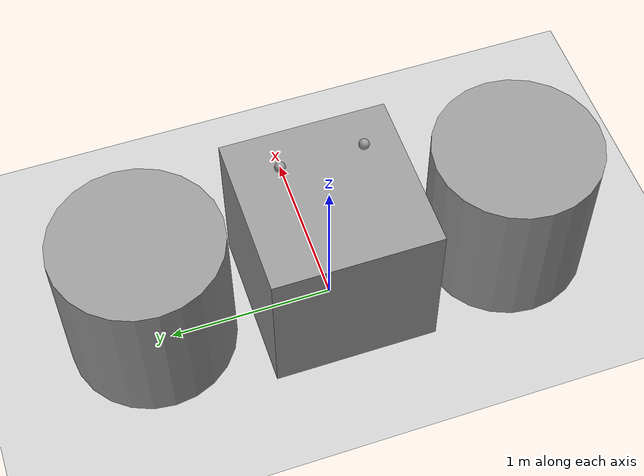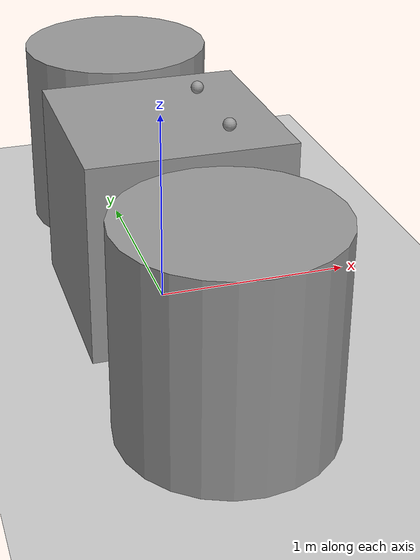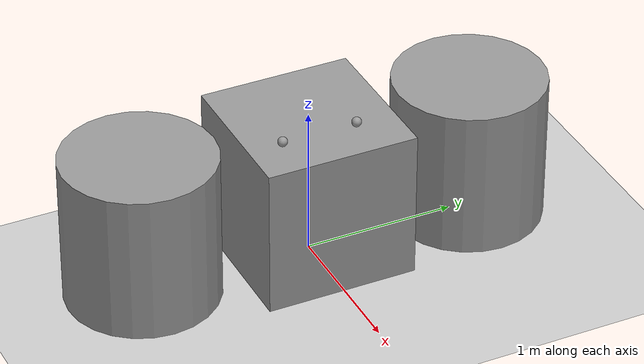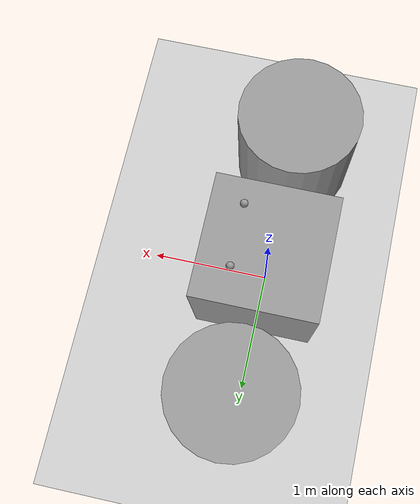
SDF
<sdf version="1.7">
 <world name="default">
  <light name="sun" type="directional">
   <pose>0 0 10 0 -0 0</pose>
   <diffuse>0.8 0.8 0.8 1</diffuse>
   <specular>0.2 0.2 0.2 1</specular>
   <attenuation>
    <range>1000</range>
    <constant>0.9</constant>
    <linear>0.01</linear>
    <quadratic>0.001</quadratic>
   </attenuation>
   <direction>-0.5 0.1 -0.9</direction>
   <spot><inner_angle>0</inner_angle><outer_angle>0</outer_angle><falloff>0</falloff></spot>
  </light>
  <model name="ground_plane">
   <static>1</static>
   <link name="link">
    <collision name="collision">
     <geometry><plane><normal>0 0 1</normal><size>100 100</size></plane></geometry>
     <surface>
      <contact><collide_bitmask>65535</collide_bitmask></contact>
      <friction><ode><mu>100</mu><mu2>50</mu2></ode></friction>
     </surface>
    </collision>
    <visual name="visual">
     <cast_shadows>0</cast_shadows>
     <geometry><plane><normal>0 0 1</normal><size>100 100</size></plane></geometry>
     <material>
      <script><uri>file://media/materials/scripts/gazebo.material</uri><name>Gazebo/Grey</name></script>
     </material>
    </visual>
   </link>
  </model>
  <gravity>0 0 -9.8</gravity>
  <magnetic_field>6e-06 2.3e-05 -4.2e-05</magnetic_field>
  <atmosphere type="adiabatic"/>
  <physics type="ode">
   <max_step_size>0.001</max_step_size>
   <real_time_factor>1</real_time_factor>
   <real_time_update_rate>1000</real_time_update_rate>
  </physics>
  <scene><ambient>0.4 0.4 0.4 1</ambient><background>0.7 0.7 0.7 1</background><shadows>1</shadows></scene>
  <spherical_coordinates>
   <surface_model>EARTH_WGS84</surface_model>
   <latitude_deg>0</latitude_deg>
   <longitude_deg>0</longitude_deg>
   <elevation>0</elevation>
   <heading_deg>0</heading_deg>
  </spherical_coordinates>
  <model name="unit_box">
   <link name="link">
    <inertial>
     <mass>1</mass>
     <inertia>
      <ixx>0.166667</ixx>
      <ixy>0</ixy>
      <ixz>0</ixz>
      <iyy>0.166667</iyy>
      <iyz>0</iyz>
      <izz>0.166667</izz>
     </inertia>
    </inertial>
    <visual name="visual">
     <geometry><box><size>1 1 1</size></box></geometry>
     <material>
      <script><name>Gazebo/Grey</name><uri>file://media/materials/scripts/gazebo.material</uri></script>
      <shader type="pixel"/>
     </material>
    </visual>
    <collision name="collision">
     <geometry><box><size>1 1 1</size></box></geometry>
     <surface>
      <friction>
       <ode><mu>1</mu><mu2>1</mu2><fdir1>0 0 0</fdir1><slip1>0</slip1><slip2>0</slip2></ode>
       <torsional>
        <coefficient>1</coefficient>
        <patch_radius>0</patch_radius>
        <surface_radius>0</surface_radius>
        <use_patch_radius>1</use_patch_radius>
        <ode><slip>0</slip></ode>
       </torsional>
      </friction>
      <bounce><restitution_coefficient>0</restitution_coefficient><threshold>1e+06</threshold></bounce>
      <contact>
       <collide_without_contact>0</collide_without_contact>
       <collide_without_contact_bitmask>1</collide_without_contact_bitmask>
       <collide_bitmask>1</collide_bitmask>
       <ode>
        <soft_cfm>0</soft_cfm>
        <soft_erp>0.2</soft_erp>
        <kp>1e+13</kp>
        <kd>1</kd>
        <max_vel>0.01</max_vel>
        <min_depth>0</min_depth>
       </ode>
       <bullet>
        <split_impulse>1</split_impulse>
        <split_impulse_penetration_threshold>-0.01</split_impulse_penetration_threshold>
        <soft_cfm>0</soft_cfm>
        <soft_erp>0.2</soft_erp>
        <kp>1e+13</kp>
        <kd>1</kd>
       </bullet>
      </contact>
     </surface>
    </collision>
   </link>
   <static>1</static>
   <pose>0.017973 -0.010251 0.5 0 -0 0</pose>
  </model>
  <model name="unit_cylinder">
   <link name="link">
    <inertial>
     <mass>1</mass>
     <inertia><ixx>0.145833</ixx><ixy>0</ixy><ixz>0</ixz><iyy>0.145833</iyy><iyz>0</iyz><izz>0.125</izz></inertia>
    </inertial>
    <visual name="visual">
     <geometry><cylinder><radius>0.5</radius><length>1</length></cylinder></geometry>
     <material>
      <script><name>Gazebo/Grey</name><uri>file://media/materials/scripts/gazebo.material</uri></script>
      <shader type="pixel"/>
     </material>
    </visual>
    <collision name="collision">
     <geometry><cylinder><radius>0.5</radius><length>1</length></cylinder></geometry>
     <surface>
      <friction>
       <ode><mu>1</mu><mu2>1</mu2><fdir1>0 0 0</fdir1><slip1>0</slip1><slip2>0</slip2></ode>
       <torsional>
        <coefficient>1</coefficient>
        <patch_radius>0</patch_radius>
        <surface_radius>0</surface_radius>
        <use_patch_radius>1</use_patch_radius>
        <ode><slip>0</slip></ode>
       </torsional>
      </friction>
      <bounce><restitution_coefficient>0</restitution_coefficient><threshold>1e+06</threshold></bounce>
      <contact>
       <collide_without_contact>0</collide_without_contact>
       <collide_without_contact_bitmask>1</collide_without_contact_bitmask>
       <collide_bitmask>1</collide_bitmask>
       <ode>
        <soft_cfm>0</soft_cfm>
        <soft_erp>0.2</soft_erp>
        <kp>1e+13</kp>
        <kd>1</kd>
        <max_vel>0.01</max_vel>
        <min_depth>0</min_depth>
       </ode>
       <bullet>
        <split_impulse>1</split_impulse>
        <split_impulse_penetration_threshold>-0.01</split_impulse_penetration_threshold>
        <soft_cfm>0</soft_cfm>
        <soft_erp>0.2</soft_erp>
        <kp>1e+13</kp>
        <kd>1</kd>
       </bullet>
      </contact>
     </surface>
    </collision>
   </link>
   <static>1</static>
   <pose>-0.027479 -1.12737 0.5 0 -0 0</pose>
  </model>
  <model name="unit_cylinder_clone">
   <link name="link">
    <inertial>
     <mass>1</mass>
     <inertia><ixx>0.145833</ixx><ixy>0</ixy><ixz>0</ixz><iyy>0.145833</iyy><iyz>0</iyz><izz>0.125</izz></inertia>
    </inertial>
    <visual name="visual">
     <geometry><cylinder><radius>0.5</radius><length>1</length></cylinder></geometry>
     <material>
      <script><name>Gazebo/Grey</name><uri>file://media/materials/scripts/gazebo.material</uri></script>
      <shader type="pixel"/>
     </material>
    </visual>
    <collision name="collision">
     <geometry><cylinder><radius>0.5</radius><length>1</length></cylinder></geometry>
     <surface>
      <friction>
       <ode><mu>1</mu><mu2>1</mu2><fdir1>0 0 0</fdir1><slip1>0</slip1><slip2>0</slip2></ode>
       <torsional>
        <coefficient>1</coefficient>
        <patch_radius>0</patch_radius>
        <surface_radius>0</surface_radius>
        <use_patch_radius>1</use_patch_radius>
        <ode><slip>0</slip></ode>
       </torsional>
      </friction>
      <bounce><restitution_coefficient>0</restitution_coefficient><threshold>1e+06</threshold></bounce>
      <contact>
       <collide_without_contact>0</collide_without_contact>
       <collide_without_contact_bitmask>1</collide_without_contact_bitmask>
       <collide_bitmask>1</collide_bitmask>
       <ode>
        <soft_cfm>0</soft_cfm>
        <soft_erp>0.2</soft_erp>
        <kp>1e+13</kp>
        <kd>1</kd>
        <max_vel>0.01</max_vel>
        <min_depth>0</min_depth>
       </ode>
       <bullet>
        <split_impulse>1</split_impulse>
        <split_impulse_penetration_threshold>-0.01</split_impulse_penetration_threshold>
        <soft_cfm>0</soft_cfm>
        <soft_erp>0.2</soft_erp>
        <kp>1e+13</kp>
        <kd>1</kd>
       </bullet>
      </contact>
     </surface>
    </collision>
   </link>
   <static>1</static>
   <pose>0.044403 1.09861 0.5 0 -0 0</pose>
  </model>
  <model name="unit_sphere">
   <link name="link">
    <inertial>
     <mass>1</mass>
     <inertia><ixx>0.1</ixx><ixy>0</ixy><ixz>0</ixz><iyy>0.1</iyy><iyz>0</iyz><izz>0.1</izz></inertia>
    </inertial>
    <visual name="visual">
     <geometry><sphere><radius>0.0318433</radius></sphere></geometry>
     <material>
      <script><name>Gazebo/Grey</name><uri>file://media/materials/scripts/gazebo.material</uri></script>
      <shader type="pixel"/>
     </material>
    </visual>
    <collision name="collision">
     <geometry><sphere><radius>0.031843</radius></sphere></geometry>
     <surface>
      <friction>
       <ode><mu>1</mu><mu2>1</mu2><fdir1>0 0 0</fdir1><slip1>0</slip1><slip2>0</slip2></ode>
       <torsional>
        <coefficient>1</coefficient>
        <patch_radius>0</patch_radius>
        <surface_radius>0</surface_radius>
        <use_patch_radius>1</use_patch_radius>
        <ode><slip>0</slip></ode>
       </torsional>
      </friction>
      <bounce><restitution_coefficient>0</restitution_coefficient><threshold>1e+06</threshold></bounce>
      <contact>
       <collide_without_contact>0</collide_without_contact>
       <collide_without_contact_bitmask>1</collide_without_contact_bitmask>
       <collide_bitmask>1</collide_bitmask>
       <ode>
        <soft_cfm>0</soft_cfm>
        <soft_erp>0.2</soft_erp>
        <kp>1e+13</kp>
        <kd>1</kd>
        <max_vel>0.01</max_vel>
        <min_depth>0</min_depth>
       </ode>
       <bullet>
        <split_impulse>1</split_impulse>
        <split_impulse_penetration_threshold>-0.01</split_impulse_penetration_threshold>
        <soft_cfm>0</soft_cfm>
        <soft_erp>0.2</soft_erp>
        <kp>1e+13</kp>
        <kd>1</kd>
       </bullet>
      </contact>
     </surface>
    </collision>
   </link>
   <static>1</static>
   <pose>0.248636 0.207439 1.03721 0 -0 0</pose>
  </model>
  <model name="unit_sphere_clone">
   <link name="link">
    <inertial>
     <mass>1</mass>
     <inertia><ixx>0.1</ixx><ixy>0</ixy><ixz>0</ixz><iyy>0.1</iyy><iyz>0</iyz><izz>0.1</izz></inertia>
    </inertial>
    <visual name="visual">
     <geometry><sphere><radius>0.0318433</radius></sphere></geometry>
     <material>
      <script><name>Gazebo/Grey</name><uri>file://media/materials/scripts/gazebo.material</uri></script>
      <shader type="pixel"/>
     </material>
    </visual>
    <collision name="collision">
     <geometry><sphere><radius>0.031843</radius></sphere></geometry>
     <surface>
      <friction>
       <ode><mu>1</mu><mu2>1</mu2><fdir1>0 0 0</fdir1><slip1>0</slip1><slip2>0</slip2></ode>
       <torsional>
        <coefficient>1</coefficient>
        <patch_radius>0</patch_radius>
        <surface_radius>0</surface_radius>
        <use_patch_radius>1</use_patch_radius>
        <ode><slip>0</slip></ode>
       </torsional>
      </friction>
      <bounce><restitution_coefficient>0</restitution_coefficient><threshold>1e+06</threshold></bounce>
      <contact>
       <collide_without_contact>0</collide_without_contact>
       <collide_without_contact_bitmask>1</collide_without_contact_bitmask>
       <collide_bitmask>1</collide_bitmask>
       <ode>
        <soft_cfm>0</soft_cfm>
        <soft_erp>0.2</soft_erp>
        <kp>1e+13</kp>
        <kd>1</kd>
        <max_vel>0.01</max_vel>
        <min_depth>0</min_depth>
       </ode>
       <bullet>
        <split_impulse>1</split_impulse>
        <split_impulse_penetration_threshold>-0.01</split_impulse_penetration_threshold>
        <soft_cfm>0</soft_cfm>
        <soft_erp>0.2</soft_erp>
        <kp>1e+13</kp>
        <kd>1</kd>
       </bullet>
      </contact>
     </surface>
    </collision>
   </link>
   <static>1</static>
   <pose>0.249795 -0.292811 1.03721 0 -0 0</pose>
  </model>
 </world>
</sdf>
